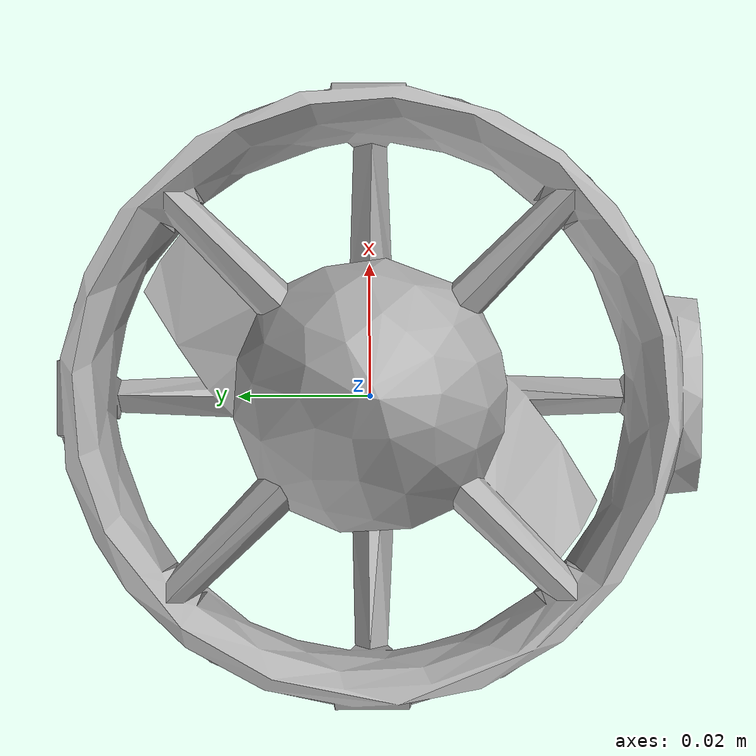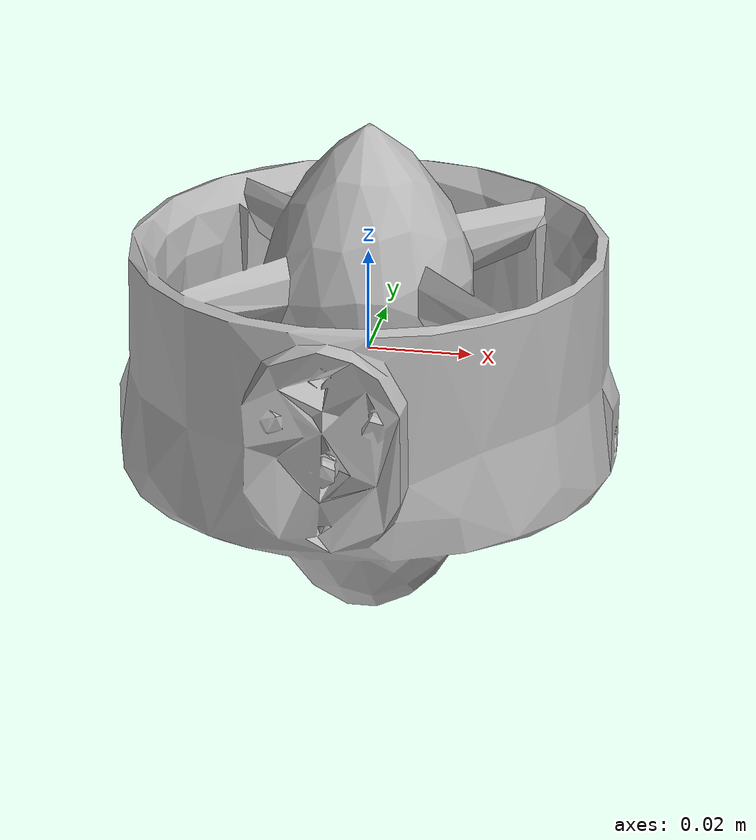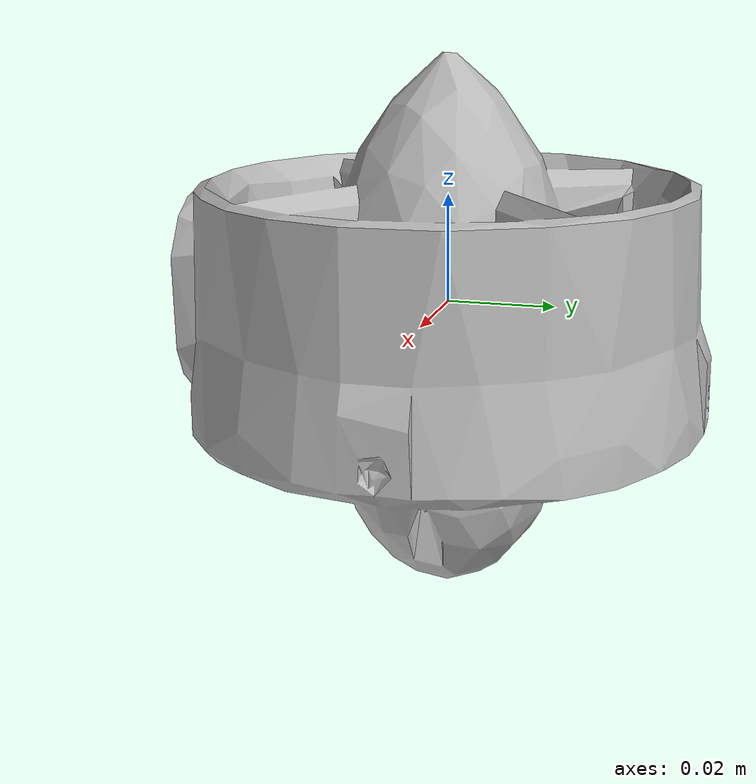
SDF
<?xml version='1.0'?>
<sdf version='1.7'>
  <model name='triton_thruster'>
    <link name='thruster'>
      <pose>-0 0 0 0 -0 0</pose>
      <inertial>
        <mass>0.000001</mass>
        <inertia>
          <ixx>0.00030988</ixx>
          <ixy>5.5564e-08</ixy>
          <ixz>3.9324e-07</ixz>
          <iyy>0.0003498</iyy>
          <iyz>1.7659e-06</iyz>
          <izz>0.00030001</izz>
        </inertia>
      </inertial>

      <gravity>1</gravity>

      <!-- Visual Data -->
      <visual name='visual'>
        <pose>0 0 0 0 -0 0</pose>
        <geometry>
          <mesh>
            <uri>model://triton_thruster/meshes/triton_thruster.dae</uri>
            <scale>1 1 1</scale>
          </mesh>
        </geometry>
        <material>
          <lighting>1</lighting>
          <shader type='pixel'/>
        </material>
        <transparency>0</transparency>
        <cast_shadows>1</cast_shadows>
      </visual>

      <!-- Collision Data-->
      <collision name='collision'>
        <laser_retro>0</laser_retro>
        <max_contacts>10</max_contacts>
        <pose>0 0 0 0 -0 0</pose>
        <geometry>
          <mesh>
            <uri>model://triton_thruster/meshes/triton_thruster.dae</uri>
            <scale>1 1 1</scale>
          </mesh>
        </geometry>
        <!-- Surface Data consists of default value, we should reseach better numbers-->
        <surface>
          <friction>
            <ode>
              <mu>1</mu>
              <mu2>1</mu2>
              <fdir1>0 0 0</fdir1>
              <slip1>0</slip1>
              <slip2>0</slip2>
            </ode>
            <torsional>
              <coefficient>1</coefficient>
              <patch_radius>0</patch_radius>
              <surface_radius>0</surface_radius>
              <use_patch_radius>1</use_patch_radius>
              <ode>
                <slip>0</slip>
              </ode>
            </torsional>
          </friction>
          <bounce>
            <restitution_coefficient>0</restitution_coefficient>
            <threshold>1e+06</threshold>
          </bounce>
          <contact>
            <collide_without_contact>0</collide_without_contact>
            <collide_without_contact_bitmask>1</collide_without_contact_bitmask>
            <collide_bitmask>1</collide_bitmask>
            <ode>
              <soft_cfm>0</soft_cfm>
              <soft_erp>0.2</soft_erp>
              <kp>1e+13</kp>
              <kd>1</kd>
              <max_vel>0.01</max_vel>
              <min_depth>0</min_depth>
            </ode>
            <bullet>
              <split_impulse>1</split_impulse>
              <split_impulse_penetration_threshold>-0.01</split_impulse_penetration_threshold>
              <soft_cfm>0</soft_cfm>
              <soft_erp>0.2</soft_erp>
              <kp>1e+13</kp>
              <kd>1</kd>
            </bullet>
          </contact>
        </surface>
      </collision>

    </link>
    <static>0</static>
    <allow_auto_disable>1</allow_auto_disable>
  </model>
</sdf>
